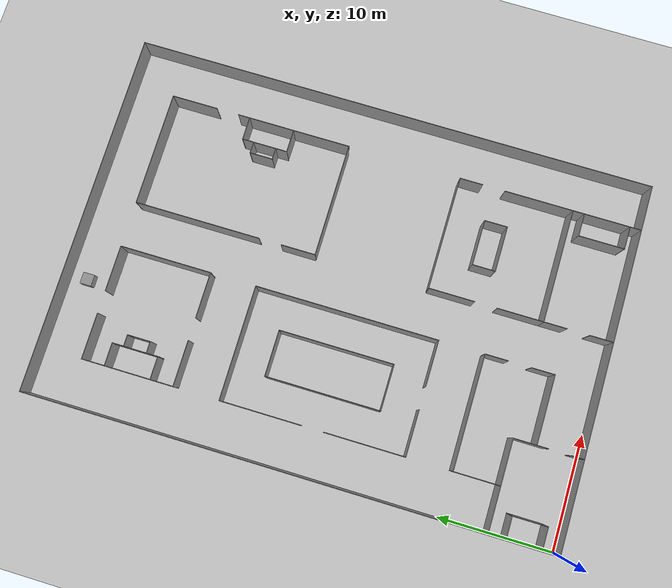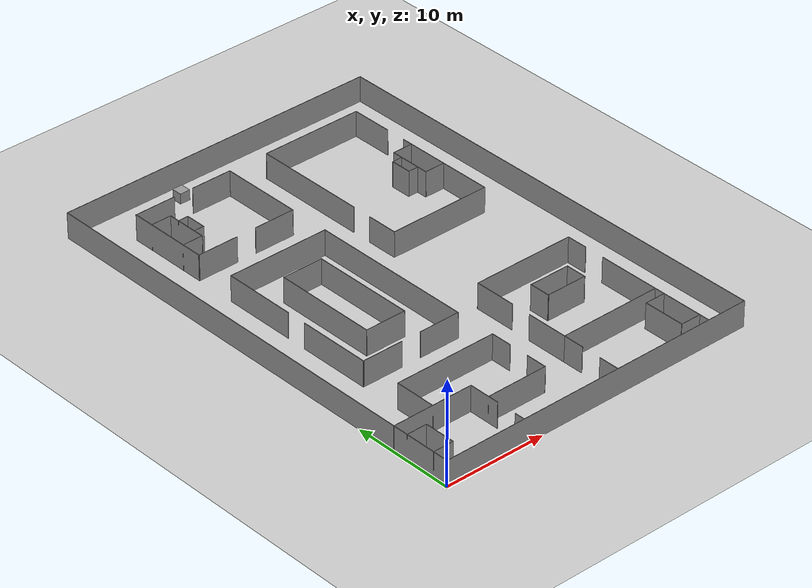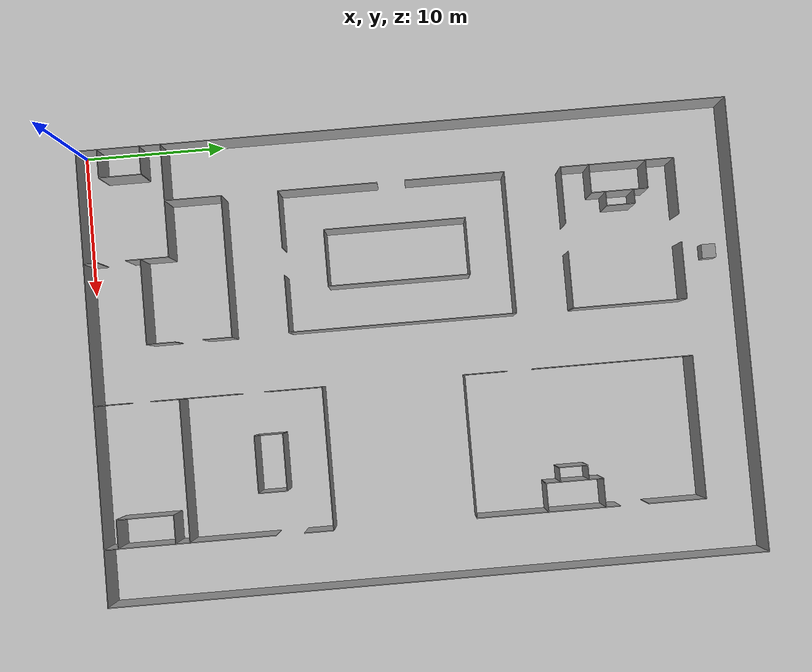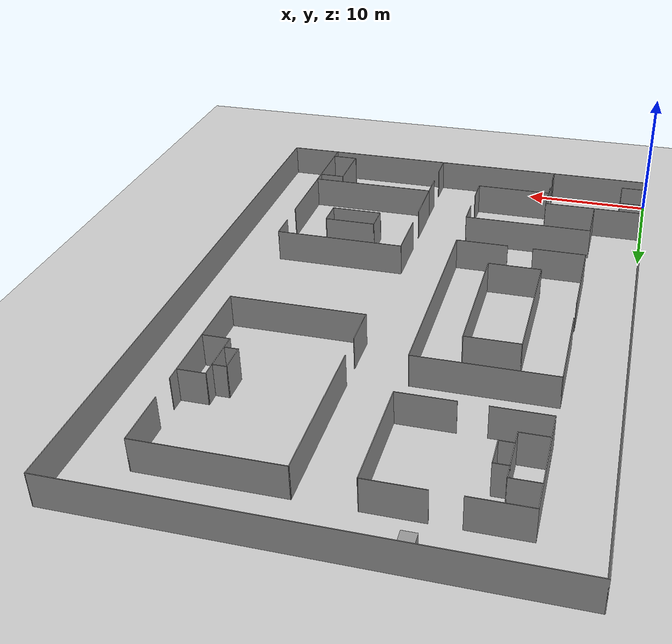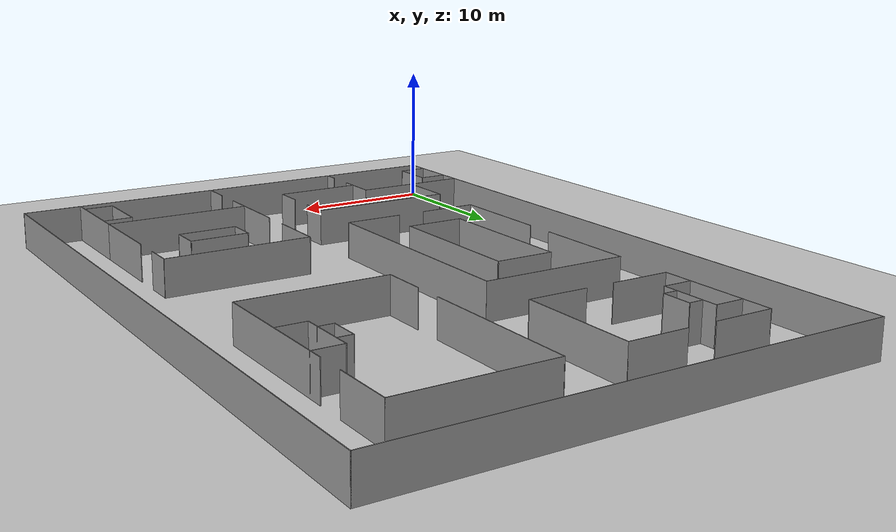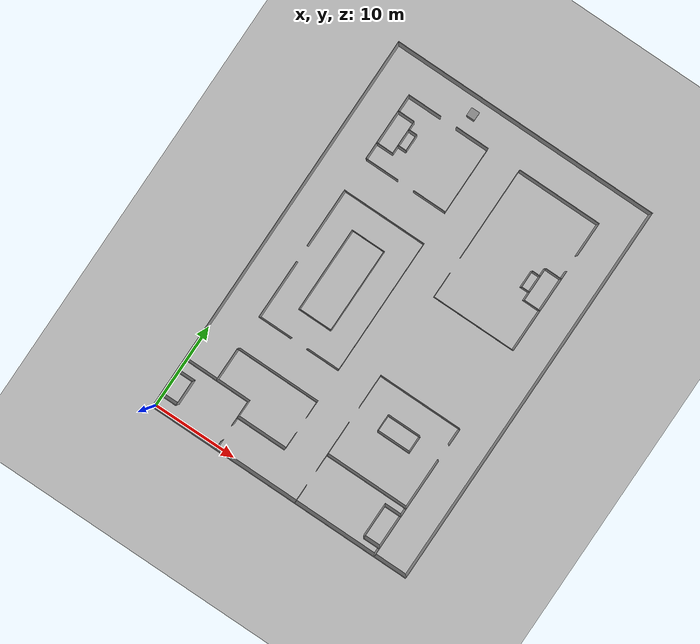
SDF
<sdf version="1.6">
 <world name="default">
  <light name="sun" type="directional">
   <pose>0 0 10 0 -0 0</pose>
   <diffuse>0.8 0.8 0.8 1</diffuse>
   <specular>0.2 0.2 0.2 1</specular>
   <attenuation>
    <range>1000</range>
    <constant>0.9</constant>
    <linear>0.01</linear>
    <quadratic>0.001</quadratic>
   </attenuation>
   <direction>-0.5 0.1 -0.9</direction>
  </light>
  <model name="ground_plane">
   <static>1</static>
   <link name="link">
    <collision name="collision">
     <geometry><plane><normal>0 0 1</normal><size>100 100</size></plane></geometry>
     <surface><friction><ode><mu>100</mu><mu2>50</mu2></ode></friction></surface>
    </collision>
    <visual name="visual">
     <cast_shadows>0</cast_shadows>
     <geometry><plane><normal>0 0 1</normal><size>100 100</size></plane></geometry>
     <material>
      <script><uri>file://media/materials/scripts/gazebo.material</uri><name>Gazebo/Grey</name></script>
     </material>
    </visual>
   </link>
  </model>
  <gravity>0 0 -9.8</gravity>
  <magnetic_field>6e-06 2.3e-05 -4.2e-05</magnetic_field>
  <atmosphere type="adiabatic"/>
  <physics name="default_physics" default="0" type="ode">
   <max_step_size>0.001</max_step_size>
   <real_time_factor>1</real_time_factor>
   <real_time_update_rate>1000</real_time_update_rate>
  </physics>
  <scene><ambient>0.4 0.4 0.4 1</ambient><background>0.7 0.7 0.7 1</background><shadows>1</shadows></scene>
  <audio><device>default</device></audio>
  <spherical_coordinates>
   <surface_model>EARTH_WGS84</surface_model>
   <latitude_deg>0</latitude_deg>
   <longitude_deg>0</longitude_deg>
   <elevation>0</elevation>
   <heading_deg>0</heading_deg>
  </spherical_coordinates>
  <model name="94AAAIMAZE">
   <pose>16 23 0 0 -0 0</pose>
   <link name="Wall_101">
    <collision name="Wall_101_Collision">
     <geometry><box><size>16.05 0.05 2.5</size></box></geometry>
     <pose>0 0 1.25 0 -0 0</pose>
    </collision>
    <visual name="Wall_101_Visual">
     <pose>0 0 1.25 0 -0 0</pose>
     <geometry><box><size>16.05 0.05 2.5</size></box></geometry>
     <material>
      <script><uri>file://media/materials/scripts/gazebo.material</uri><name>Gazebo/Grey</name></script>
      <ambient>1 1 1 1</ambient>
     </material>
     <meta><layer>0</layer></meta>
    </visual>
    <pose>-2 -0.999999 0 0 -0 -1.5708</pose>
   </link>
   <link name="Wall_103">
    <collision name="Wall_103_Collision">
     <geometry><box><size>4.05 0.05 2.5</size></box></geometry>
     <pose>0 0 1.25 0 -0 0</pose>
    </collision>
    <visual name="Wall_103_Visual">
     <pose>0 0 1.25 0 -0 0</pose>
     <geometry><box><size>4.05 0.05 2.5</size></box></geometry>
     <material>
      <script><uri>file://media/materials/scripts/gazebo.material</uri><name>Gazebo/Grey</name></script>
      <ambient>1 1 1 1</ambient>
     </material>
     <meta><layer>0</layer></meta>
    </visual>
    <pose>-4 19 0 0 -0 0</pose>
   </link>
   <link name="Wall_105">
    <collision name="Wall_105_Collision">
     <geometry><box><size>4.05 0.05 2.5</size></box></geometry>
     <pose>0 0 1.25 0 -0 0</pose>
    </collision>
    <visual name="Wall_105_Visual">
     <pose>0 0 1.25 0 -0 0</pose>
     <geometry><box><size>4.05 0.05 2.5</size></box></geometry>
     <material>
      <script><uri>file://media/materials/scripts/gazebo.material</uri><name>Gazebo/Grey</name></script>
      <ambient>1 1 1 1</ambient>
     </material>
     <meta><layer>0</layer></meta>
    </visual>
    <pose>-4 11 0 0 -0 0</pose>
   </link>
   <link name="Wall_107">
    <collision name="Wall_107_Collision">
     <geometry><box><size>8.05 0.05 2.5</size></box></geometry>
     <pose>0 0 1.25 0 -0 0</pose>
    </collision>
    <visual name="Wall_107_Visual">
     <pose>0 0 1.25 0 -0 0</pose>
     <geometry><box><size>8.05 0.05 2.5</size></box></geometry>
     <material>
      <script><uri>file://media/materials/scripts/gazebo.material</uri><name>Gazebo/Grey</name></script>
      <ambient>1 1 1 1</ambient>
     </material>
     <meta><layer>0</layer></meta>
    </visual>
    <pose>-2 15 0 0 -0 -1.5708</pose>
   </link>
   <link name="Wall_109">
    <collision name="Wall_109_Collision">
     <geometry><box><size>10.05 0.05 2.5</size></box></geometry>
     <pose>0 0 1.25 0 -0 0</pose>
    </collision>
    <visual name="Wall_109_Visual">
     <pose>0 0 1.25 0 -0 0</pose>
     <geometry><box><size>10.05 0.05 2.5</size></box></geometry>
     <material>
      <script><uri>file://media/materials/scripts/gazebo.material</uri><name>Gazebo/Grey</name></script>
      <ambient>1 1 1 1</ambient>
     </material>
     <meta><layer>0</layer></meta>
    </visual>
    <pose>7 19 0 0 -0 0</pose>
   </link>
   <link name="Wall_111">
    <collision name="Wall_111_Collision">
     <geometry><box><size>4.05 0.05 2.5</size></box></geometry>
     <pose>0 0 1.25 0 -0 0</pose>
    </collision>
    <visual name="Wall_111_Visual">
     <pose>0 0 1.25 0 -0 0</pose>
     <geometry><box><size>4.05 0.05 2.5</size></box></geometry>
     <material>
      <script><uri>file://media/materials/scripts/gazebo.material</uri><name>Gazebo/Grey</name></script>
      <ambient>1 1 1 1</ambient>
     </material>
     <meta><layer>0</layer></meta>
    </visual>
    <pose>12 17 0 0 -0 -1.5708</pose>
   </link>
   <link name="Wall_113">
    <collision name="Wall_113_Collision">
     <geometry><box><size>11.05 0.05 2.5</size></box></geometry>
     <pose>0 0 1.25 0 -0 0</pose>
    </collision>
    <visual name="Wall_113_Visual">
     <pose>0 0 1.25 0 -0 0</pose>
     <geometry><box><size>11.05 0.05 2.5</size></box></geometry>
     <material>
      <script><uri>file://media/materials/scripts/gazebo.material</uri><name>Gazebo/Grey</name></script>
      <ambient>1 1 1 1</ambient>
     </material>
     <meta><layer>0</layer></meta>
    </visual>
    <pose>2 13.5 0 0 -0 -1.5708</pose>
   </link>
   <link name="Wall_115">
    <collision name="Wall_115_Collision">
     <geometry><box><size>3.05 0.05 2.5</size></box></geometry>
     <pose>0 0 1.25 0 -0 0</pose>
    </collision>
    <visual name="Wall_115_Visual">
     <pose>0 0 1.25 0 -0 0</pose>
     <geometry><box><size>3.05 0.05 2.5</size></box></geometry>
     <material>
      <script><uri>file://media/materials/scripts/gazebo.material</uri><name>Gazebo/Grey</name></script>
      <ambient>1 1 1 1</ambient>
     </material>
     <meta><layer>0</layer></meta>
    </visual>
    <pose>2 4.5 0 0 -0 -1.5708</pose>
   </link>
   <link name="Wall_117">
    <collision name="Wall_117_Collision">
     <geometry><box><size>10.05 0.05 2.5</size></box></geometry>
     <pose>0 0 1.25 0 -0 0</pose>
    </collision>
    <visual name="Wall_117_Visual">
     <pose>0 0 1.25 0 -0 0</pose>
     <geometry><box><size>10.05 0.05 2.5</size></box></geometry>
     <material>
      <script><uri>file://media/materials/scripts/gazebo.material</uri><name>Gazebo/Grey</name></script>
      <ambient>1 1 1 1</ambient>
     </material>
     <meta><layer>0</layer></meta>
    </visual>
    <pose>7 3 0 0 -0 0</pose>
   </link>
   <link name="Wall_119">
    <collision name="Wall_119_Collision">
     <geometry><box><size>10.05 0.05 2.5</size></box></geometry>
     <pose>0 0 1.25 0 -0 0</pose>
    </collision>
    <visual name="Wall_119_Visual">
     <pose>0 0 1.25 0 -0 0</pose>
     <geometry><box><size>10.05 0.05 2.5</size></box></geometry>
     <material>
      <script><uri>file://media/materials/scripts/gazebo.material</uri><name>Gazebo/Grey</name></script>
      <ambient>1 1 1 1</ambient>
     </material>
     <meta><layer>0</layer></meta>
    </visual>
    <pose>12 8 0 0 -0 1.5708</pose>
   </link>
   <link name="Wall_121">
    <collision name="Wall_121_Collision">
     <geometry><box><size>4.05 0.05 2.5</size></box></geometry>
     <pose>0 0 1.25 0 -0 0</pose>
    </collision>
    <visual name="Wall_121_Visual">
     <pose>0 0 1.25 0 -0 0</pose>
     <geometry><box><size>4.05 0.05 2.5</size></box></geometry>
     <material>
      <script><uri>file://media/materials/scripts/gazebo.material</uri><name>Gazebo/Grey</name></script>
      <ambient>1 1 1 1</ambient>
     </material>
     <meta><layer>0</layer></meta>
    </visual>
    <pose>2 -9 0 0 -0 -1.5708</pose>
   </link>
   <link name="Wall_123">
    <collision name="Wall_123_Collision">
     <geometry><box><size>4.05 0.05 2.5</size></box></geometry>
     <pose>0 0 1.25 0 -0 0</pose>
    </collision>
    <visual name="Wall_123_Visual">
     <pose>0 0 1.25 0 -0 0</pose>
     <geometry><box><size>4.05 0.05 2.5</size></box></geometry>
     <material>
      <script><uri>file://media/materials/scripts/gazebo.material</uri><name>Gazebo/Grey</name></script>
      <ambient>1 1 1 1</ambient>
     </material>
     <meta><layer>0</layer></meta>
    </visual>
    <pose>2 -15 0 0 -0 -1.5708</pose>
   </link>
   <link name="Wall_125">
    <collision name="Wall_125_Collision">
     <geometry><box><size>10.05 0.05 2.5</size></box></geometry>
     <pose>0 0 1.25 0 -0 0</pose>
    </collision>
    <visual name="Wall_125_Visual">
     <pose>0 0 1.25 0 -0 0</pose>
     <geometry><box><size>10.05 0.05 2.5</size></box></geometry>
     <material>
      <script><uri>file://media/materials/scripts/gazebo.material</uri><name>Gazebo/Grey</name></script>
      <ambient>1 1 1 1</ambient>
     </material>
     <meta><layer>0</layer></meta>
    </visual>
    <pose>7 -17 0 0 -0 0</pose>
   </link>
   <link name="Wall_127">
    <collision name="Wall_127_Collision">
     <geometry><box><size>6.05 0.05 2.5</size></box></geometry>
     <pose>0 0 1.25 0 -0 0</pose>
    </collision>
    <visual name="Wall_127_Visual">
     <pose>0 0 1.25 0 -0 0</pose>
     <geometry><box><size>6.05 0.05 2.5</size></box></geometry>
     <material>
      <script><uri>file://media/materials/scripts/gazebo.material</uri><name>Gazebo/Grey</name></script>
      <ambient>1 1 1 1</ambient>
     </material>
     <meta><layer>0</layer></meta>
    </visual>
    <pose>12 -14 0 0 -0 1.5708</pose>
   </link>
   <link name="Wall_129">
    <collision name="Wall_129_Collision">
     <geometry><box><size>2.05 0.05 2.5</size></box></geometry>
     <pose>0 0 1.25 0 -0 0</pose>
    </collision>
    <visual name="Wall_129_Visual">
     <pose>0 0 1.25 0 -0 0</pose>
     <geometry><box><size>2.05 0.05 2.5</size></box></geometry>
     <material>
      <script><uri>file://media/materials/scripts/gazebo.material</uri><name>Gazebo/Grey</name></script>
      <ambient>1 1 1 1</ambient>
     </material>
     <meta><layer>0</layer></meta>
    </visual>
    <pose>12 -8 0 0 -0 1.5708</pose>
   </link>
   <link name="Wall_131">
    <collision name="Wall_131_Collision">
     <geometry><box><size>10.05 0.05 2.5</size></box></geometry>
     <pose>0 0 1.25 0 -0 0</pose>
    </collision>
    <visual name="Wall_131_Visual">
     <pose>0 0 1.25 0 -0 0</pose>
     <geometry><box><size>10.05 0.05 2.5</size></box></geometry>
     <material>
      <script><uri>file://media/materials/scripts/gazebo.material</uri><name>Gazebo/Grey</name></script>
      <ambient>1 1 1 1</ambient>
     </material>
     <meta><layer>0</layer></meta>
    </visual>
    <pose>7 -7 0 0 -0 0</pose>
   </link>
   <link name="Wall_133">
    <collision name="Wall_133_Collision">
     <geometry><box><size>2.05 0.05 2.5</size></box></geometry>
     <pose>0 0 1.25 0 -0 0</pose>
    </collision>
    <visual name="Wall_133_Visual">
     <pose>0 0 1.25 0 -0 0</pose>
     <geometry><box><size>2.05 0.05 2.5</size></box></geometry>
     <material>
      <script><uri>file://media/materials/scripts/gazebo.material</uri><name>Gazebo/Grey</name></script>
      <ambient>1 1 1 1</ambient>
     </material>
     <meta><layer>0</layer></meta>
    </visual>
    <pose>2 -18 0 0 -0 1.5708</pose>
   </link>
   <link name="Wall_135">
    <collision name="Wall_135_Collision">
     <geometry><box><size>2.05 0.05 2.5</size></box></geometry>
     <pose>0 0 1.25 0 -0 0</pose>
    </collision>
    <visual name="Wall_135_Visual">
     <pose>0 0 1.25 0 -0 0</pose>
     <geometry><box><size>2.05 0.05 2.5</size></box></geometry>
     <material>
      <script><uri>file://media/materials/scripts/gazebo.material</uri><name>Gazebo/Grey</name></script>
      <ambient>1 1 1 1</ambient>
     </material>
     <meta><layer>0</layer></meta>
    </visual>
    <pose>2 -22 0 0 -0 -1.5708</pose>
   </link>
   <link name="Wall_137">
    <collision name="Wall_137_Collision">
     <geometry><box><size>6.05 0.05 2.5</size></box></geometry>
     <pose>0 0 1.25 0 -0 0</pose>
    </collision>
    <visual name="Wall_137_Visual">
     <pose>0 0 1.25 0 -0 0</pose>
     <geometry><box><size>6.05 0.05 2.5</size></box></geometry>
     <material>
      <script><uri>file://media/materials/scripts/gazebo.material</uri><name>Gazebo/Grey</name></script>
      <ambient>1 1 1 1</ambient>
     </material>
     <meta><layer>0</layer></meta>
    </visual>
    <pose>12.0005 -20 0 0 -0 -1.57063</pose>
   </link>
   <link name="Wall_139">
    <collision name="Wall_139_Collision">
     <geometry><box><size>2.05 0.05 2.5</size></box></geometry>
     <pose>0 0 1.25 0 -0 0</pose>
    </collision>
    <visual name="Wall_139_Visual">
     <pose>0 0 1.25 0 -0 0</pose>
     <geometry><box><size>2.05 0.05 2.5</size></box></geometry>
     <material>
      <script><uri>file://media/materials/scripts/gazebo.material</uri><name>Gazebo/Grey</name></script>
      <ambient>1 1 1 1</ambient>
     </material>
     <meta><layer>0</layer></meta>
    </visual>
    <pose>-15 -21.5 0 0 -0 0</pose>
   </link>
   <link name="Wall_141">
    <collision name="Wall_141_Collision">
     <geometry><box><size>2.05 0.05 2.5</size></box></geometry>
     <pose>0 0 1.25 0 -0 0</pose>
    </collision>
    <visual name="Wall_141_Visual">
     <pose>0 0 1.25 0 -0 0</pose>
     <geometry><box><size>2.05 0.05 2.5</size></box></geometry>
     <material>
      <script><uri>file://media/materials/scripts/gazebo.material</uri><name>Gazebo/Grey</name></script>
      <ambient>1 1 1 1</ambient>
     </material>
     <meta><layer>0</layer></meta>
    </visual>
    <pose>-15 -18.5 0 0 -0 0</pose>
   </link>
   <link name="Wall_143">
    <collision name="Wall_143_Collision">
     <geometry><box><size>3.05 0.05 2.5</size></box></geometry>
     <pose>0 0 1.25 0 -0 0</pose>
    </collision>
    <visual name="Wall_143_Visual">
     <pose>0 0 1.25 0 -0 0</pose>
     <geometry><box><size>3.05 0.05 2.5</size></box></geometry>
     <material>
      <script><uri>file://media/materials/scripts/gazebo.material</uri><name>Gazebo/Grey</name></script>
      <ambient>1 1 1 1</ambient>
     </material>
     <meta><layer>0</layer></meta>
    </visual>
    <pose>-14 -20 0 0 -0 -1.5708</pose>
   </link>
   <link name="Wall_146">
    <collision name="Wall_146_Collision">
     <geometry><box><size>2.05 0.05 2.5</size></box></geometry>
     <pose>0 0 1.25 0 -0 0</pose>
    </collision>
    <visual name="Wall_146_Visual">
     <pose>0 0 1.25 0 -0 0</pose>
     <geometry><box><size>2.05 0.05 2.5</size></box></geometry>
     <material>
      <script><uri>file://media/materials/scripts/gazebo.material</uri><name>Gazebo/Grey</name></script>
      <ambient>1 1 1 1</ambient>
     </material>
     <meta><layer>0</layer></meta>
    </visual>
    <pose>11 -22 0 0 -0 0</pose>
   </link>
   <link name="Wall_148">
    <collision name="Wall_148_Collision">
     <geometry><box><size>4.05 0.05 2.5</size></box></geometry>
     <pose>0 0 1.25 0 -0 0</pose>
    </collision>
    <visual name="Wall_148_Visual">
     <pose>0 0 1.25 0 -0 0</pose>
     <geometry><box><size>4.05 0.05 2.5</size></box></geometry>
     <material>
      <script><uri>file://media/materials/scripts/gazebo.material</uri><name>Gazebo/Grey</name></script>
      <ambient>1 1 1 1</ambient>
     </material>
     <meta><layer>0</layer></meta>
    </visual>
    <pose>10 -20 0 0 -0 1.5708</pose>
   </link>
   <link name="Wall_150">
    <collision name="Wall_150_Collision">
     <geometry><box><size>2.05 0.05 2.5</size></box></geometry>
     <pose>0 0 1.25 0 -0 0</pose>
    </collision>
    <visual name="Wall_150_Visual">
     <pose>0 0 1.25 0 -0 0</pose>
     <geometry><box><size>2.05 0.05 2.5</size></box></geometry>
     <material>
      <script><uri>file://media/materials/scripts/gazebo.material</uri><name>Gazebo/Grey</name></script>
      <ambient>1 1 1 1</ambient>
     </material>
     <meta><layer>0</layer></meta>
    </visual>
    <pose>11 -18 0 0 -0 0</pose>
   </link>
   <link name="Wall_152">
    <collision name="Wall_152_Collision">
     <geometry><box><size>2.05 0.05 2.5</size></box></geometry>
     <pose>0 0 1.25 0 -0 0</pose>
    </collision>
    <visual name="Wall_152_Visual">
     <pose>0 0 1.25 0 -0 0</pose>
     <geometry><box><size>2.05 0.05 2.5</size></box></geometry>
     <material>
      <script><uri>file://media/materials/scripts/gazebo.material</uri><name>Gazebo/Grey</name></script>
      <ambient>1 1 1 1</ambient>
     </material>
     <meta><layer>0</layer></meta>
    </visual>
    <pose>5 -11 0 0 -0 1.5708</pose>
   </link>
   <link name="Wall_154">
    <collision name="Wall_154_Collision">
     <geometry><box><size>2.05 0.05 2.5</size></box></geometry>
     <pose>0 0 1.25 0 -0 0</pose>
    </collision>
    <visual name="Wall_154_Visual">
     <pose>0 0 1.25 0 -0 0</pose>
     <geometry><box><size>2.05 0.05 2.5</size></box></geometry>
     <material>
      <script><uri>file://media/materials/scripts/gazebo.material</uri><name>Gazebo/Grey</name></script>
      <ambient>1 1 1 1</ambient>
     </material>
     <meta><layer>0</layer></meta>
    </visual>
    <pose>9 -11 0 0 -0 -1.5708</pose>
   </link>
   <link name="Wall_156">
    <collision name="Wall_156_Collision">
     <geometry><box><size>4.05 0.05 2.5</size></box></geometry>
     <pose>0 0 1.25 0 -0 0</pose>
    </collision>
    <visual name="Wall_156_Visual">
     <pose>0 0 1.25 0 -0 0</pose>
     <geometry><box><size>4.05 0.05 2.5</size></box></geometry>
     <material>
      <script><uri>file://media/materials/scripts/gazebo.material</uri><name>Gazebo/Grey</name></script>
      <ambient>1 1 1 1</ambient>
     </material>
     <meta><layer>0</layer></meta>
    </visual>
    <pose>7 -10 0 0 -0 0</pose>
   </link>
   <link name="Wall_158">
    <collision name="Wall_158_Collision">
     <geometry><box><size>4.05 0.05 2.5</size></box></geometry>
     <pose>0 0 1.25 0 -0 0</pose>
    </collision>
    <visual name="Wall_158_Visual">
     <pose>0 0 1.25 0 -0 0</pose>
     <geometry><box><size>4.05 0.05 2.5</size></box></geometry>
     <material>
      <script><uri>file://media/materials/scripts/gazebo.material</uri><name>Gazebo/Grey</name></script>
      <ambient>1 1 1 1</ambient>
     </material>
     <meta><layer>0</layer></meta>
    </visual>
    <pose>7 -12 0 0 -0 0</pose>
   </link>
   <link name="Wall_160">
    <collision name="Wall_160_Collision">
     <geometry><box><size>2.05 0.05 2.5</size></box></geometry>
     <pose>0 0 1.25 0 -0 0</pose>
    </collision>
    <visual name="Wall_160_Visual">
     <pose>0 0 1.25 0 -0 0</pose>
     <geometry><box><size>2.05 0.05 2.5</size></box></geometry>
     <material>
      <script><uri>file://media/materials/scripts/gazebo.material</uri><name>Gazebo/Grey</name></script>
      <ambient>1 1 1 1</ambient>
     </material>
     <meta><layer>0</layer></meta>
    </visual>
    <pose>-11 17 0 0 -0 0</pose>
   </link>
   <link name="Wall_162">
    <collision name="Wall_162_Collision">
     <geometry><box><size>4.05 0.05 2.5</size></box></geometry>
     <pose>0 0 1.25 0 -0 0</pose>
    </collision>
    <visual name="Wall_162_Visual">
     <pose>0 0 1.25 0 -0 0</pose>
     <geometry><box><size>4.05 0.05 2.5</size></box></geometry>
     <material>
      <script><uri>file://media/materials/scripts/gazebo.material</uri><name>Gazebo/Grey</name></script>
      <ambient>1 1 1 1</ambient>
     </material>
     <meta><layer>0</layer></meta>
    </visual>
    <pose>-10 15 0 0 -0 -1.5708</pose>
   </link>
   <link name="Wall_164">
    <collision name="Wall_164_Collision">
     <geometry><box><size>2.05 0.05 2.5</size></box></geometry>
     <pose>0 0 1.25 0 -0 0</pose>
    </collision>
    <visual name="Wall_164_Visual">
     <pose>0 0 1.25 0 -0 0</pose>
     <geometry><box><size>2.05 0.05 2.5</size></box></geometry>
     <material>
      <script><uri>file://media/materials/scripts/gazebo.material</uri><name>Gazebo/Grey</name></script>
      <ambient>1 1 1 1</ambient>
     </material>
     <meta><layer>0</layer></meta>
    </visual>
    <pose>-11 13 0 0 -0 0</pose>
   </link>
   <link name="Wall_166">
    <collision name="Wall_166_Collision">
     <geometry><box><size>2.05 0.05 2.5</size></box></geometry>
     <pose>0 0 1.25 0 -0 0</pose>
    </collision>
    <visual name="Wall_166_Visual">
     <pose>0 0 1.25 0 -0 0</pose>
     <geometry><box><size>2.05 0.05 2.5</size></box></geometry>
     <material>
      <script><uri>file://media/materials/scripts/gazebo.material</uri><name>Gazebo/Grey</name></script>
      <ambient>1 1 1 1</ambient>
     </material>
     <meta><layer>0</layer></meta>
    </visual>
    <pose>-9 15 0 0 -0 -1.5708</pose>
   </link>
   <link name="Wall_168">
    <collision name="Wall_168_Collision">
     <geometry><box><size>1.05 0.05 2.5</size></box></geometry>
     <pose>0 0 1.25 0 -0 0</pose>
    </collision>
    <visual name="Wall_168_Visual">
     <pose>0 0 1.25 0 -0 0</pose>
     <geometry><box><size>1.05 0.05 2.5</size></box></geometry>
     <material>
      <script><uri>file://media/materials/scripts/gazebo.material</uri><name>Gazebo/Grey</name></script>
      <ambient>1 1 1 1</ambient>
     </material>
     <meta><layer>0</layer></meta>
    </visual>
    <pose>-9.5 16 0 0 -0 0</pose>
   </link>
   <link name="Wall_170">
    <collision name="Wall_170_Collision">
     <geometry><box><size>1.05 0.05 2.5</size></box></geometry>
     <pose>0 0 1.25 0 -0 0</pose>
    </collision>
    <visual name="Wall_170_Visual">
     <pose>0 0 1.25 0 -0 0</pose>
     <geometry><box><size>1.05 0.05 2.5</size></box></geometry>
     <material>
      <script><uri>file://media/materials/scripts/gazebo.material</uri><name>Gazebo/Grey</name></script>
      <ambient>1 1 1 1</ambient>
     </material>
     <meta><layer>0</layer></meta>
    </visual>
    <pose>-9.5 14 0 0 -0 0</pose>
   </link>
   <link name="Wall_172">
    <collision name="Wall_172_Collision">
     <geometry><box><size>2.05 0.05 2.5</size></box></geometry>
     <pose>0 0 1.25 0 -0 0</pose>
    </collision>
    <visual name="Wall_172_Visual">
     <pose>0 0 1.25 0 -0 0</pose>
     <geometry><box><size>2.05 0.05 2.5</size></box></geometry>
     <material>
      <script><uri>file://media/materials/scripts/gazebo.material</uri><name>Gazebo/Grey</name></script>
      <ambient>1 1 1 1</ambient>
     </material>
     <meta><layer>0</layer></meta>
    </visual>
    <pose>11 12 0 0 -0 0</pose>
   </link>
   <link name="Wall_174">
    <collision name="Wall_174_Collision">
     <geometry><box><size>4.05 0.05 2.5</size></box></geometry>
     <pose>0 0 1.25 0 -0 0</pose>
    </collision>
    <visual name="Wall_174_Visual">
     <pose>0 0 1.25 0 -0 0</pose>
     <geometry><box><size>4.05 0.05 2.5</size></box></geometry>
     <material>
      <script><uri>file://media/materials/scripts/gazebo.material</uri><name>Gazebo/Grey</name></script>
      <ambient>1 1 1 1</ambient>
     </material>
     <meta><layer>0</layer></meta>
    </visual>
    <pose>10 10 0 0 -0 -1.5708</pose>
   </link>
   <link name="Wall_176">
    <collision name="Wall_176_Collision">
     <geometry><box><size>1.05 0.05 2.5</size></box></geometry>
     <pose>0 0 1.25 0 -0 0</pose>
    </collision>
    <visual name="Wall_176_Visual">
     <pose>0 0 1.25 0 -0 0</pose>
     <geometry><box><size>1.05 0.05 2.5</size></box></geometry>
     <material>
      <script><uri>file://media/materials/scripts/gazebo.material</uri><name>Gazebo/Grey</name></script>
      <ambient>1 1 1 1</ambient>
     </material>
     <meta><layer>0</layer></meta>
    </visual>
    <pose>9.5 11 0 0 -0 0</pose>
   </link>
   <link name="Wall_178">
    <collision name="Wall_178_Collision">
     <geometry><box><size>2.05 0.05 2.5</size></box></geometry>
     <pose>0 0 1.25 0 -0 0</pose>
    </collision>
    <visual name="Wall_178_Visual">
     <pose>0 0 1.25 0 -0 0</pose>
     <geometry><box><size>2.05 0.05 2.5</size></box></geometry>
     <material>
      <script><uri>file://media/materials/scripts/gazebo.material</uri><name>Gazebo/Grey</name></script>
      <ambient>1 1 1 1</ambient>
     </material>
     <meta><layer>0</layer></meta>
    </visual>
    <pose>11 8 0 0 -0 0</pose>
   </link>
   <link name="Wall_180">
    <collision name="Wall_180_Collision">
     <geometry><box><size>2.05 0.05 2.5</size></box></geometry>
     <pose>0 0 1.25 0 -0 0</pose>
    </collision>
    <visual name="Wall_180_Visual">
     <pose>0 0 1.25 0 -0 0</pose>
     <geometry><box><size>2.05 0.05 2.5</size></box></geometry>
     <material>
      <script><uri>file://media/materials/scripts/gazebo.material</uri><name>Gazebo/Grey</name></script>
      <ambient>1 1 1 1</ambient>
     </material>
     <meta><layer>0</layer></meta>
    </visual>
    <pose>9 10 0 0 -0 -1.5708</pose>
   </link>
   <link name="Wall_182">
    <collision name="Wall_182_Collision">
     <geometry><box><size>1.05 0.05 2.5</size></box></geometry>
     <pose>0 0 1.25 0 -0 0</pose>
    </collision>
    <visual name="Wall_182_Visual">
     <pose>0 0 1.25 0 -0 0</pose>
     <geometry><box><size>1.05 0.05 2.5</size></box></geometry>
     <material>
      <script><uri>file://media/materials/scripts/gazebo.material</uri><name>Gazebo/Grey</name></script>
      <ambient>1 1 1 1</ambient>
     </material>
     <meta><layer>0</layer></meta>
    </visual>
    <pose>9.5 9 0 0 -0 0</pose>
   </link>
   <link name="Wall_184">
    <collision name="Wall_184_Collision">
     <geometry><box><size>4.05 0.05 2.5</size></box></geometry>
     <pose>0 0 1.25 0 -0 0</pose>
    </collision>
    <visual name="Wall_184_Visual">
     <pose>0 0 1.25 0 -0 0</pose>
     <geometry><box><size>4.05 0.05 2.5</size></box></geometry>
     <material>
      <script><uri>file://media/materials/scripts/gazebo.material</uri><name>Gazebo/Grey</name></script>
      <ambient>1 1 1 1</ambient>
     </material>
     <meta><layer>0</layer></meta>
    </visual>
    <pose>-7 4 0 0 -0 0</pose>
   </link>
   <link name="Wall_186">
    <collision name="Wall_186_Collision">
     <geometry><box><size>10.05 0.05 2.5</size></box></geometry>
     <pose>0 0 1.25 0 -0 0</pose>
    </collision>
    <visual name="Wall_186_Visual">
     <pose>0 0 1.25 0 -0 0</pose>
     <geometry><box><size>10.05 0.05 2.5</size></box></geometry>
     <material>
      <script><uri>file://media/materials/scripts/gazebo.material</uri><name>Gazebo/Grey</name></script>
      <ambient>1 1 1 1</ambient>
     </material>
     <meta><layer>0</layer></meta>
    </visual>
    <pose>-9 -0.999999 0 0 -0 1.5708</pose>
   </link>
   <link name="Wall_188">
    <collision name="Wall_188_Collision">
     <geometry><box><size>4.05 0.05 2.5</size></box></geometry>
     <pose>0 0 1.25 0 -0 0</pose>
    </collision>
    <visual name="Wall_188_Visual">
     <pose>0 0 1.25 0 -0 0</pose>
     <geometry><box><size>4.05 0.05 2.5</size></box></geometry>
     <material>
      <script><uri>file://media/materials/scripts/gazebo.material</uri><name>Gazebo/Grey</name></script>
      <ambient>1 1 1 1</ambient>
     </material>
     <meta><layer>0</layer></meta>
    </visual>
    <pose>-7 -6 0 0 -0 0</pose>
   </link>
   <link name="Wall_190">
    <collision name="Wall_190_Collision">
     <geometry><box><size>10.05 0.05 2.5</size></box></geometry>
     <pose>0 0 1.25 0 -0 0</pose>
    </collision>
    <visual name="Wall_190_Visual">
     <pose>0 0 1.25 0 -0 0</pose>
     <geometry><box><size>10.05 0.05 2.5</size></box></geometry>
     <material>
      <script><uri>file://media/materials/scripts/gazebo.material</uri><name>Gazebo/Grey</name></script>
      <ambient>1 1 1 1</ambient>
     </material>
     <meta><layer>0</layer></meta>
    </visual>
    <pose>-5 -0.999999 0 0 -0 1.5708</pose>
   </link>
   <link name="Wall_61">
    <collision name="Wall_61_Collision">
     <geometry><box><size>32.05 0.05 2.5</size></box></geometry>
     <pose>0 0 1.25 0 -0 0</pose>
    </collision>
    <visual name="Wall_61_Visual">
     <pose>0 0 1.25 0 -0 0</pose>
     <geometry><box><size>32.05 0.05 2.5</size></box></geometry>
     <material>
      <script><uri>file://media/materials/scripts/gazebo.material</uri><name>Gazebo/Grey</name></script>
      <ambient>1 1 1 1</ambient>
     </material>
     <meta><layer>0</layer></meta>
    </visual>
    <pose>1e-06 -23 0 0 -0 0</pose>
   </link>
   <link name="Wall_63">
    <collision name="Wall_63_Collision">
     <geometry><box><size>46.05 0.05 2.5</size></box></geometry>
     <pose>0 0 1.25 0 -0 0</pose>
    </collision>
    <visual name="Wall_63_Visual">
     <pose>0 0 1.25 0 -0 0</pose>
     <geometry><box><size>46.05 0.05 2.5</size></box></geometry>
     <material>
      <script><uri>file://media/materials/scripts/gazebo.material</uri><name>Gazebo/Grey</name></script>
      <ambient>1 1 1 1</ambient>
     </material>
     <meta><layer>0</layer></meta>
    </visual>
    <pose>-16 1e-06 0 0 -0 1.5708</pose>
   </link>
   <link name="Wall_65">
    <collision name="Wall_65_Collision">
     <geometry><box><size>32.05 0.05 2.5</size></box></geometry>
     <pose>0 0 1.25 0 -0 0</pose>
    </collision>
    <visual name="Wall_65_Visual">
     <pose>0 0 1.25 0 -0 0</pose>
     <geometry><box><size>32.05 0.05 2.5</size></box></geometry>
     <material>
      <script><uri>file://media/materials/scripts/gazebo.material</uri><name>Gazebo/Grey</name></script>
      <ambient>1 1 1 1</ambient>
     </material>
     <meta><layer>0</layer></meta>
    </visual>
    <pose>1e-06 23 0 0 -0 0</pose>
   </link>
   <link name="Wall_67">
    <collision name="Wall_67_Collision">
     <geometry><box><size>46.05 0.05 2.5</size></box></geometry>
     <pose>0 0 1.25 0 -0 0</pose>
    </collision>
    <visual name="Wall_67_Visual">
     <pose>0 0 1.25 0 -0 0</pose>
     <geometry><box><size>46.05 0.05 2.5</size></box></geometry>
     <material>
      <script><uri>file://media/materials/scripts/gazebo.material</uri><name>Gazebo/Grey</name></script>
      <ambient>1 1 1 1</ambient>
     </material>
     <meta><layer>0</layer></meta>
    </visual>
    <pose>16 1e-06 0 0 -0 -1.5708</pose>
   </link>
   <link name="Wall_69">
    <collision name="Wall_69_Collision">
     <geometry><box><size>8.05 0.05 2.5</size></box></geometry>
     <pose>0 0 1.25 0 -0 0</pose>
    </collision>
    <visual name="Wall_69_Visual">
     <pose>0 0 1.25 0 -0 0</pose>
     <geometry><box><size>8.05 0.05 2.5</size></box></geometry>
     <material>
      <script><uri>file://media/materials/scripts/gazebo.material</uri><name>Gazebo/Grey</name></script>
      <ambient>1 1 1 1</ambient>
     </material>
     <meta><layer>0</layer></meta>
    </visual>
    <pose>-12 -17 0 0 -0 0</pose>
   </link>
   <link name="Wall_71">
    <collision name="Wall_71_Collision">
     <geometry><box><size>3.05 0.05 2.5</size></box></geometry>
     <pose>0 0 1.25 0 -0 0</pose>
    </collision>
    <visual name="Wall_71_Visual">
     <pose>0 0 1.25 0 -0 0</pose>
     <geometry><box><size>3.05 0.05 2.5</size></box></geometry>
     <material>
      <script><uri>file://media/materials/scripts/gazebo.material</uri><name>Gazebo/Grey</name></script>
      <ambient>1 1 1 1</ambient>
     </material>
     <meta><layer>0</layer></meta>
    </visual>
    <pose>-8 -18.5 0 0 -0 -1.5708</pose>
   </link>
   <link name="Wall_73">
    <collision name="Wall_73_Collision">
     <geometry><box><size>1.05 0.05 2.5</size></box></geometry>
     <pose>0 0 1.25 0 -0 0</pose>
    </collision>
    <visual name="Wall_73_Visual">
     <pose>0 0 1.25 0 -0 0</pose>
     <geometry><box><size>1.05 0.05 2.5</size></box></geometry>
     <material>
      <script><uri>file://media/materials/scripts/gazebo.material</uri><name>Gazebo/Grey</name></script>
      <ambient>1 1 1 1</ambient>
     </material>
     <meta><layer>0</layer></meta>
    </visual>
    <pose>-8 -22.5 0 0 -0 -1.5708</pose>
   </link>
   <link name="Wall_75">
    <collision name="Wall_75_Collision">
     <geometry><box><size>6.05 0.05 2.5</size></box></geometry>
     <pose>0 0 1.25 0 -0 0</pose>
    </collision>
    <visual name="Wall_75_Visual">
     <pose>0 0 1.25 0 -0 0</pose>
     <geometry><box><size>6.05 0.05 2.5</size></box></geometry>
     <material>
      <script><uri>file://media/materials/scripts/gazebo.material</uri><name>Gazebo/Grey</name></script>
      <ambient>1 1 1 1</ambient>
     </material>
     <meta><layer>0</layer></meta>
    </visual>
    <pose>-5 -19 0 0 -0 0</pose>
   </link>
   <link name="Wall_77">
    <collision name="Wall_77_Collision">
     <geometry><box><size>4.05 0.05 2.5</size></box></geometry>
     <pose>0 0 1.25 0 -0 0</pose>
    </collision>
    <visual name="Wall_77_Visual">
     <pose>0 0 1.25 0 -0 0</pose>
     <geometry><box><size>4.05 0.05 2.5</size></box></geometry>
     <material>
      <script><uri>file://media/materials/scripts/gazebo.material</uri><name>Gazebo/Grey</name></script>
      <ambient>1 1 1 1</ambient>
     </material>
     <meta><layer>0</layer></meta>
    </visual>
    <pose>-12 -15 0 0 -0 1.5708</pose>
   </link>
   <link name="Wall_79">
    <collision name="Wall_79_Collision">
     <geometry><box><size>10.05 0.05 2.5</size></box></geometry>
     <pose>0 0 1.25 0 -0 0</pose>
    </collision>
    <visual name="Wall_79_Visual">
     <pose>0 0 1.25 0 -0 0</pose>
     <geometry><box><size>10.05 0.05 2.5</size></box></geometry>
     <material>
      <script><uri>file://media/materials/scripts/gazebo.material</uri><name>Gazebo/Grey</name></script>
      <ambient>1 1 1 1</ambient>
     </material>
     <meta><layer>0</layer></meta>
    </visual>
    <pose>-7 -13 0 0 -0 0</pose>
   </link>
   <link name="Wall_81">
    <collision name="Wall_81_Collision">
     <geometry><box><size>2.05 0.05 2.5</size></box></geometry>
     <pose>0 0 1.25 0 -0 0</pose>
    </collision>
    <visual name="Wall_81_Visual">
     <pose>0 0 1.25 0 -0 0</pose>
     <geometry><box><size>2.05 0.05 2.5</size></box></geometry>
     <material>
      <script><uri>file://media/materials/scripts/gazebo.material</uri><name>Gazebo/Grey</name></script>
      <ambient>1 1 1 1</ambient>
     </material>
     <meta><layer>0</layer></meta>
    </visual>
    <pose>-2 -14 0 0 -0 -1.5708</pose>
   </link>
   <link name="Wall_83">
    <collision name="Wall_83_Collision">
     <geometry><box><size>7.05 0.05 2.5</size></box></geometry>
     <pose>0 0 1.25 0 -0 0</pose>
    </collision>
    <visual name="Wall_83_Visual">
     <pose>0 0 1.25 0 -0 0</pose>
     <geometry><box><size>7.05 0.05 2.5</size></box></geometry>
     <material>
      <script><uri>file://media/materials/scripts/gazebo.material</uri><name>Gazebo/Grey</name></script>
      <ambient>1 1 1 1</ambient>
     </material>
     <meta><layer>0</layer></meta>
    </visual>
    <pose>-12 -5.5 0 0 -0 1.5708</pose>
   </link>
   <link name="Wall_85">
    <collision name="Wall_85_Collision">
     <geometry><box><size>2.05 0.05 2.5</size></box></geometry>
     <pose>0 0 1.25 0 -0 0</pose>
    </collision>
    <visual name="Wall_85_Visual">
     <pose>0 0 1.25 0 -0 0</pose>
     <geometry><box><size>2.05 0.05 2.5</size></box></geometry>
     <material>
      <script><uri>file://media/materials/scripts/gazebo.material</uri><name>Gazebo/Grey</name></script>
      <ambient>1 1 1 1</ambient>
     </material>
     <meta><layer>0</layer></meta>
    </visual>
    <pose>-2 -18 0 0 -0 1.5708</pose>
   </link>
   <link name="Wall_87">
    <collision name="Wall_87_Collision">
     <geometry><box><size>7.05 0.05 2.5</size></box></geometry>
     <pose>0 0 1.25 0 -0 0</pose>
    </collision>
    <visual name="Wall_87_Visual">
     <pose>0 0 1.25 0 -0 0</pose>
     <geometry><box><size>7.05 0.05 2.5</size></box></geometry>
     <material>
      <script><uri>file://media/materials/scripts/gazebo.material</uri><name>Gazebo/Grey</name></script>
      <ambient>1 1 1 1</ambient>
     </material>
     <meta><layer>0</layer></meta>
    </visual>
    <pose>-12 3.5 0 0 -0 1.5708</pose>
   </link>
   <link name="Wall_89">
    <collision name="Wall_89_Collision">
     <geometry><box><size>8.05 0.05 2.5</size></box></geometry>
     <pose>0 0 1.25 0 -0 0</pose>
    </collision>
    <visual name="Wall_89_Visual">
     <pose>0 0 1.25 0 -0 0</pose>
     <geometry><box><size>8.05 0.05 2.5</size></box></geometry>
     <material>
      <script><uri>file://media/materials/scripts/gazebo.material</uri><name>Gazebo/Grey</name></script>
      <ambient>1 1 1 1</ambient>
     </material>
     <meta><layer>0</layer></meta>
    </visual>
    <pose>-12 15 0 0 -0 1.5708</pose>
   </link>
   <link name="Wall_91">
    <collision name="Wall_91_Collision">
     <geometry><box><size>4.05 0.05 2.5</size></box></geometry>
     <pose>0 0 1.25 0 -0 0</pose>
    </collision>
    <visual name="Wall_91_Visual">
     <pose>0 0 1.25 0 -0 0</pose>
     <geometry><box><size>4.05 0.05 2.5</size></box></geometry>
     <material>
      <script><uri>file://media/materials/scripts/gazebo.material</uri><name>Gazebo/Grey</name></script>
      <ambient>1 1 1 1</ambient>
     </material>
     <meta><layer>0</layer></meta>
    </visual>
    <pose>-10 -9 0 0 -0 0</pose>
   </link>
   <link name="Wall_93">
    <collision name="Wall_93_Collision">
     <geometry><box><size>4.05 0.05 2.5</size></box></geometry>
     <pose>0 0 1.25 0 -0 0</pose>
    </collision>
    <visual name="Wall_93_Visual">
     <pose>0 0 1.25 0 -0 0</pose>
     <geometry><box><size>4.05 0.05 2.5</size></box></geometry>
     <material>
      <script><uri>file://media/materials/scripts/gazebo.material</uri><name>Gazebo/Grey</name></script>
      <ambient>1 1 1 1</ambient>
     </material>
     <meta><layer>0</layer></meta>
    </visual>
    <pose>-4 -9 0 0 -0 0</pose>
   </link>
   <link name="Wall_95">
    <collision name="Wall_95_Collision">
     <geometry><box><size>10.05 0.05 2.5</size></box></geometry>
     <pose>0 0 1.25 0 -0 0</pose>
    </collision>
    <visual name="Wall_95_Visual">
     <pose>0 0 1.25 0 -0 0</pose>
     <geometry><box><size>10.05 0.05 2.5</size></box></geometry>
     <material>
      <script><uri>file://media/materials/scripts/gazebo.material</uri><name>Gazebo/Grey</name></script>
      <ambient>1 1 1 1</ambient>
     </material>
     <meta><layer>0</layer></meta>
    </visual>
    <pose>-7 7 0 0 -0 0</pose>
   </link>
   <link name="Wall_97">
    <collision name="Wall_97_Collision">
     <geometry><box><size>4.05 0.05 2.5</size></box></geometry>
     <pose>0 0 1.25 0 -0 0</pose>
    </collision>
    <visual name="Wall_97_Visual">
     <pose>0 0 1.25 0 -0 0</pose>
     <geometry><box><size>4.05 0.05 2.5</size></box></geometry>
     <material>
      <script><uri>file://media/materials/scripts/gazebo.material</uri><name>Gazebo/Grey</name></script>
      <ambient>1 1 1 1</ambient>
     </material>
     <meta><layer>0</layer></meta>
    </visual>
    <pose>-10 11 0 0 -0 0</pose>
   </link>
   <link name="Wall_99">
    <collision name="Wall_99_Collision">
     <geometry><box><size>4.05 0.05 2.5</size></box></geometry>
     <pose>0 0 1.25 0 -0 0</pose>
    </collision>
    <visual name="Wall_99_Visual">
     <pose>0 0 1.25 0 -0 0</pose>
     <geometry><box><size>4.05 0.05 2.5</size></box></geometry>
     <material>
      <script><uri>file://media/materials/scripts/gazebo.material</uri><name>Gazebo/Grey</name></script>
      <ambient>1 1 1 1</ambient>
     </material>
     <meta><layer>0</layer></meta>
    </visual>
    <pose>-10 19 0 0 -0 0</pose>
   </link>
   <static>1</static>
  </model>
  <plugin name="ActorPosesPlugin" filename="libActorPosesPlugin.so"/>
  <model name="unit_box">
   <pose>10.6188 44.2973 0.5 0 -0 0</pose>
   <link name="link">
    <inertial>
     <mass>1</mass>
     <inertia>
      <ixx>0.166667</ixx>
      <ixy>0</ixy>
      <ixz>0</ixz>
      <iyy>0.166667</iyy>
      <iyz>0</iyz>
      <izz>0.166667</izz>
     </inertia>
    </inertial>
    <collision name="collision"><geometry><box><size>1 1 1</size></box></geometry></collision>
    <visual name="visual">
     <geometry><box><size>1 1 1</size></box></geometry>
     <material>
      <script><name>Gazebo/Grey</name><uri>file://media/materials/scripts/gazebo.material</uri></script>
     </material>
    </visual>
   </link>
  </model>
 </world>
</sdf>
